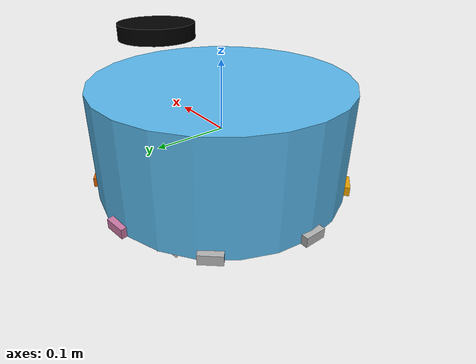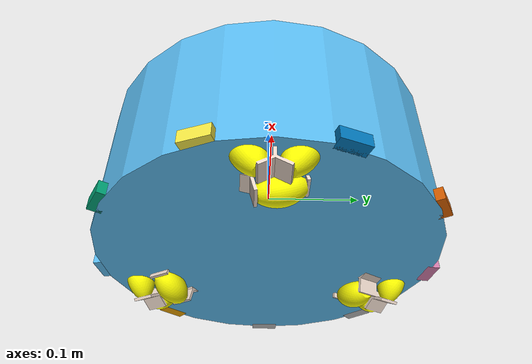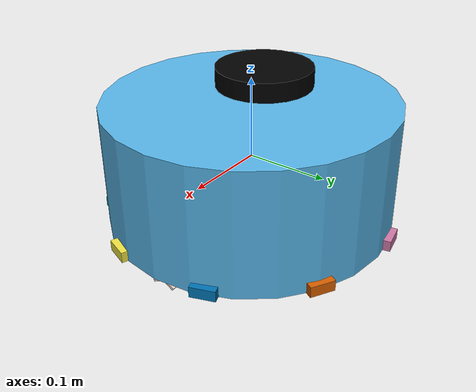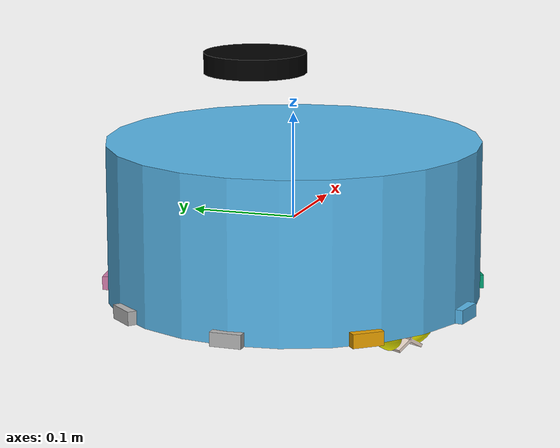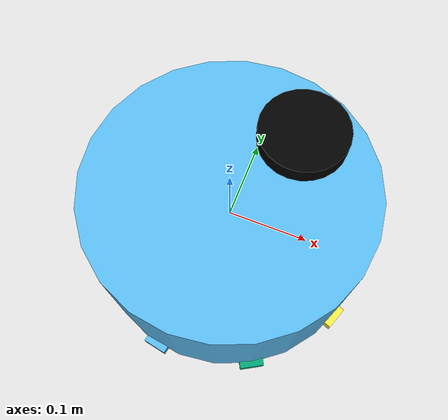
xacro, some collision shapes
<?xml version="1.0"?>
<!-- Revolute-Revolute Manipulator -->
<robot name="robotino_base" xmlns:xacro="http://www.ros.org/wiki/xacro">

    <xacro:include filename="omni_wheels.urdf.xacro" />
    <xacro:include filename="robotino_base.gazebo.xacro" />
    <xacro:include filename="dist_sensor.urdf.xacro" />

    <!-- Constants for robot dimensions -->
    <xacro:property name="PI" value="3.1415926535897931" />
    <xacro:property name="mass" value="1" /> <!-- arbitrary value for mass -->
    <xacro:property name="friction" value="0.7" /> <!-- Square dimensions (widthxwidth) of beams -->
    <xacro:property name="radius" value="0.176" /> <!-- Link 1 -->
    <xacro:property name="height" value="0.150" /> <!-- Link 2 -->
    <xacro:property name="wheel_radius" value="0.0375" /> <!-- Link 1 -->
    <xacro:property name="wheel_height" value="0.06" /> <!-- Link 2 -->
    <xacro:property name="wheel_clearance" value="0.02" /> <!-- Link 2 -->

    <!-- Base Link -->
    <link name="base_link">
    </link>

    <link name="structure_link">
        <collision>
            <origin xyz="0 0 0" rpy="0 0 0" />
            <geometry>
                <cylinder radius="${radius}" length="${height}" />
            </geometry>
        </collision>

        <visual>
            <origin xyz="0 0 -0.02" rpy="0 0 0" />
            <geometry>
                <mesh filename="package://neo_robotino_sim/meshes/robotino_body.dae"/>
            </geometry>
        </visual>

        <inertial>
            <origin xyz="0 0 0" rpy="0 0 0" />
            <mass value="${mass}" />
            <inertia
                ixx="0.5" ixy="0.0" ixz="0.0"
                iyy="0.5" iyz="0.0"
                izz="0.5" />
        </inertial>
    </link>

    <link name="lidar_link">
        <collision>
            <origin xyz="0 0 0" rpy="0 0 0" />
            <geometry>
                <cylinder radius="0.05" length="0.02" />
            </geometry>
        </collision>

        <visual>
            <origin xyz="0 0 0" rpy="0 0 0" />
            <geometry>
                <cylinder radius="0.05" length="0.02" />
            </geometry>
            <material name="black">
                <color rgba="0 0 0 1" />
            </material>
        </visual>

        <inertial>
            <origin xyz="0 0 0" rpy="0 0 0" />
            <mass value="0.200" />
            <inertia
                ixx="0.1" ixy="0.0" ixz="0.0"
                iyy="0.1" iyz="0.0"
                izz="0.1" />
        </inertial>
    </link>

    <link name="base_footprint">

    </link>

    <joint name="footprint_joint" type="fixed">
        <parent link="base_link" />
        <child link="base_footprint" />
        <origin xyz="0 0 ${((-height/2)+(-wheel_radius)+(wheel_clearance))}" rpy="0 0 ${PI}" />
    </joint>

    <joint name="base_to_structure" type="fixed">
        <parent link="base_link" />
        <child link="structure_link" />
        <origin xyz="0 0 0" rpy="0 0 ${PI}" />
    </joint>

    <joint name="structure_to_lidar" type="fixed">
        <parent link="structure_link" />
        <child link="lidar_link" />
        <origin xyz="-0.06 -0.06 ${(height/2)+0.06}" rpy="0 0 ${PI}" />
    </joint>

    <xacro:omni_wheel suffix="back" radius="${wheel_radius}" height="${wheel_height}" mass="0.2">
        <origin xyz="-0.13 0 ${(-height/2)+(wheel_radius)-(wheel_clearance)}" rpy="${PI/2} 0 ${-PI/2}" />
        <parent link="structure_link" />
    </xacro:omni_wheel>

    <xacro:omni_wheel suffix="right" radius="${wheel_radius}" height="${wheel_height}" mass="0.2">
        <origin xyz="0.065 -0.11 ${(-height/2)+(wheel_radius)-(wheel_clearance)}" rpy="${PI/2} 0 ${-PI/3 + PI/2}" />
        <parent link="structure_link" />
    </xacro:omni_wheel>

    <xacro:omni_wheel suffix="left" radius="${wheel_radius}" height="${wheel_height}" mass="0.2">
        <origin xyz="0.065 0.11 ${(-height/2)+(wheel_radius)-(wheel_clearance)}" rpy="${PI/2} 0 ${PI/3 + PI/2}" />
        <parent link="structure_link" />
    </xacro:omni_wheel>

    <xacro:dist_sensor suffix="0" mass="0.0035" robot_radius="${radius}">
        <parent link="structure_link" />
    </xacro:dist_sensor>
    <xacro:dist_sensor suffix="1" mass="0.0035" robot_radius="${radius}">
        <parent link="structure_link" />
    </xacro:dist_sensor>
    <xacro:dist_sensor suffix="2" mass="0.0035" robot_radius="${radius}">
        <parent link="structure_link" />
    </xacro:dist_sensor>
    <xacro:dist_sensor suffix="3" mass="0.0035" robot_radius="${radius}">
        <parent link="structure_link" />
    </xacro:dist_sensor>
    <xacro:dist_sensor suffix="4" mass="0.0035" robot_radius="${radius}">
        <parent link="structure_link" />
    </xacro:dist_sensor>
    <xacro:dist_sensor suffix="5" mass="0.0035" robot_radius="${radius}">
        <parent link="structure_link" />
    </xacro:dist_sensor>
    <xacro:dist_sensor suffix="6" mass="0.0035" robot_radius="${radius}">
        <parent link="structure_link" />
    </xacro:dist_sensor>
    <xacro:dist_sensor suffix="7" mass="0.0035" robot_radius="${radius}">
        <parent link="structure_link" />
    </xacro:dist_sensor>
    <xacro:dist_sensor suffix="8" mass="0.0035" robot_radius="${radius}">
        <parent link="structure_link" />
    </xacro:dist_sensor>

    <ros2_control name="IgnitionSystem" type="system">
        <hardware>
            <plugin>gz_ros2_control/GazeboSimSystem</plugin>
        </hardware>
        <joint name="omni_back_joint">
            <command_interface name="velocity">
                <param name="min">-15</param>
                <param name="max">15</param>
            </command_interface>
            <state_interface name="position" />
            <state_interface name="velocity" />
            <state_interface name="effort" />
        </joint>
        <joint name="omni_left_joint">
            <command_interface name="velocity">
                <param name="min">-15</param>
                <param name="max">15</param>
            </command_interface>
            <state_interface name="position" />
            <state_interface name="velocity" />
            <state_interface name="effort" />
        </joint>
        <joint name="omni_right_joint">
            <command_interface name="velocity">
                <param name="min">-15</param>
                <param name="max">15</param>
            </command_interface>
            <state_interface name="position" />
            <state_interface name="velocity" />
            <state_interface name="effort" />
        </joint>
    </ros2_control>

</robot>

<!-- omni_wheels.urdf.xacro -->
<robot xmlns:xacro="http://www.ros.org/wiki/xacro">

  <xacro:macro name="omni_wheel" params="suffix radius height mass *joint_pose *joint_parent">
    <xacro:property name="PI" value="3.1415926535897931" />
    <link name="omni_${suffix}_link">
      <collision>
        <origin xyz="0 0 0" rpy="0 0 0" />
        <geometry>
          <cylinder radius="${radius}" length="${height}" />
        </geometry>
      </collision>

      <visual>
        <origin xyz="0 0 0.005" rpy="0 0 0" />
        <geometry>
          <mesh filename="package://neo_robotino_sim/meshes/omni_wheel.dae"/>
      </geometry>
      </visual>

      <inertial>
        <origin xyz="0 0 0" rpy="0 0 0" />
        <mass value="${mass}" />
        <inertia
          ixx="${mass*(3*(radius**2)+(height**2))/12}" ixy="0.0" ixz="0.0"
          iyy="${mass*(3*(radius**2)+(height**2))/12}" iyz="0.0"
          izz="${mass*(radius**2)/2}" />
      </inertial>
    </link>

    <!--
    esta parte faz o atrito da roda omni ser de apenas uma direção
    fonte: https://github.com/ERC-BPGC/omnibase/blob/master/omnibase_description/xacro/wheel.urdf.xacro
    -->
    <gazebo reference="omni_${suffix}_link">
      <mu1 value="0.2" />
      <mu2 value="10" />
      <kp value="10000000.0" />
      <kd value="10000.0" />
      <fdir1 value="0 0 1" />
      <maxContacts value="1" />
    </gazebo>

    <!-- precisa de parent e origin -->
    <joint name="omni_${suffix}_joint" type="continuous">
      <xacro:insert_block name="joint_pose" />
      <xacro:insert_block name="joint_parent" />
      <child link="omni_${suffix}_link" />
      <axis xyz="0 0 1" rpy="0 0 0" />
      <limit effort="30" velocity="25.0" />
    </joint>

  </xacro:macro>
</robot>

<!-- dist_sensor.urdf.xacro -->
<robot xmlns:xacro="http://www.ros.org/wiki/xacro">

  <xacro:macro name="sens_joint_origin" params="angle radius">
    <!-- seno e cosseno já podem ser usados diretamente nas expressões -->
    <origin xyz="${cos(angle)*radius} ${sin(angle)*radius} -0.0685"
            rpy="0 0 ${angle}" />
  </xacro:macro>

  <xacro:macro name="dist_sensor" params="suffix mass robot_radius *joint_parent">

    <xacro:property name="PI" value="3.1415926535897931" />
    <xacro:property name="forty_degrees" value="0.698132" />

    <link name="dist_sensor_${suffix}_link">
      <collision>
        <origin xyz="0 0 0" rpy="0 0 0" />
        <geometry>
            <box size="0.0295 0.0135 0.013" />
        </geometry>
      </collision>

      <visual>
        <origin xyz="0 0 0" rpy="0 0 0" />
        <geometry>
            <box size="0.0135 0.0295 0.013" />
        </geometry>
      </visual>

      <inertial>
        <origin xyz="0 0 0" rpy="0 0 0" />
        <mass value="${mass}" />
        <inertia
          ixx="${(mass*(0.013**2 + 0.0135**2))/12}" ixy="0.0" ixz="0.0"
          iyy="${(mass*(0.0295**2 + 0.0135**2))/12}" iyz="0.0"
          izz="${(mass*(0.0295**2 + 0.013**2))/12}" />
      </inertial>
    </link>

    <!-- precisa de parent e origin -->
    <joint name="dist_sensor_${suffix}_joint" type="fixed">
      <xacro:insert_block name="joint_parent" />
      <child link="dist_sensor_${suffix}_link" />
      <xacro:sens_joint_origin angle="${suffix*forty_degrees}" radius="${robot_radius}"/>
    </joint>

  </xacro:macro>
</robot>
